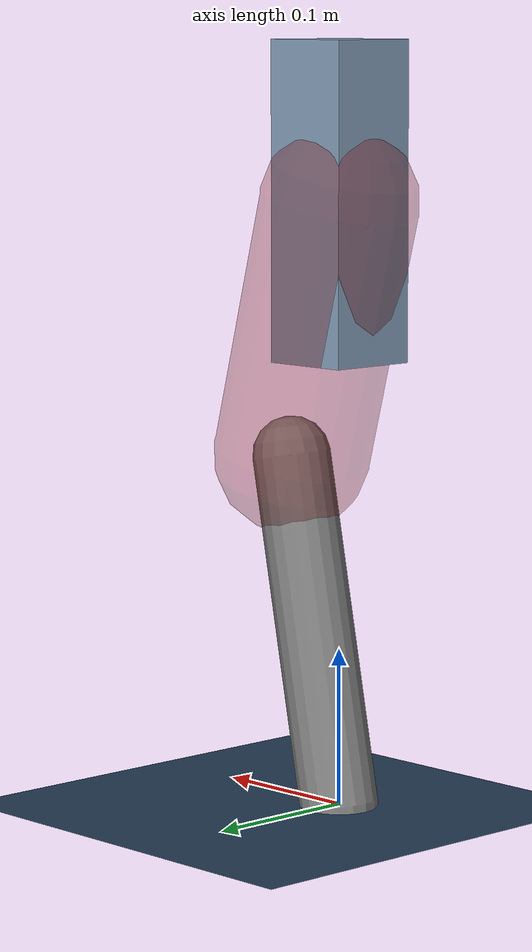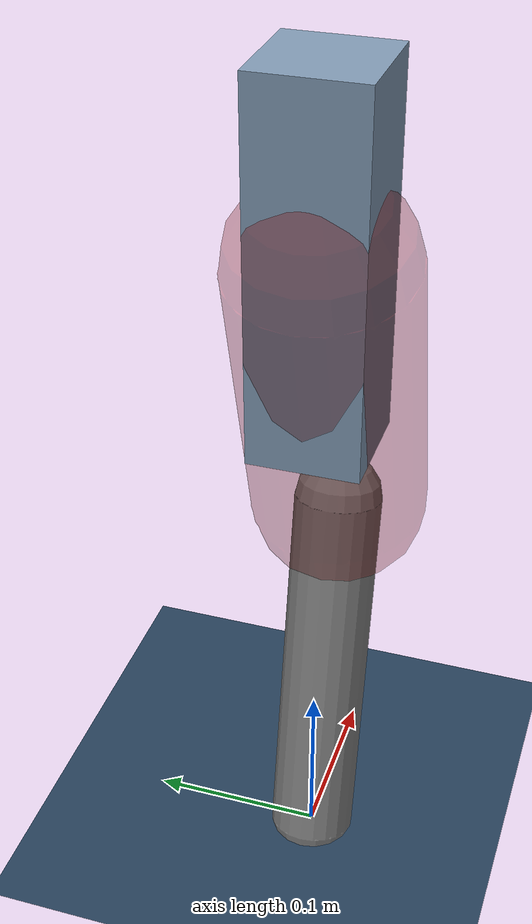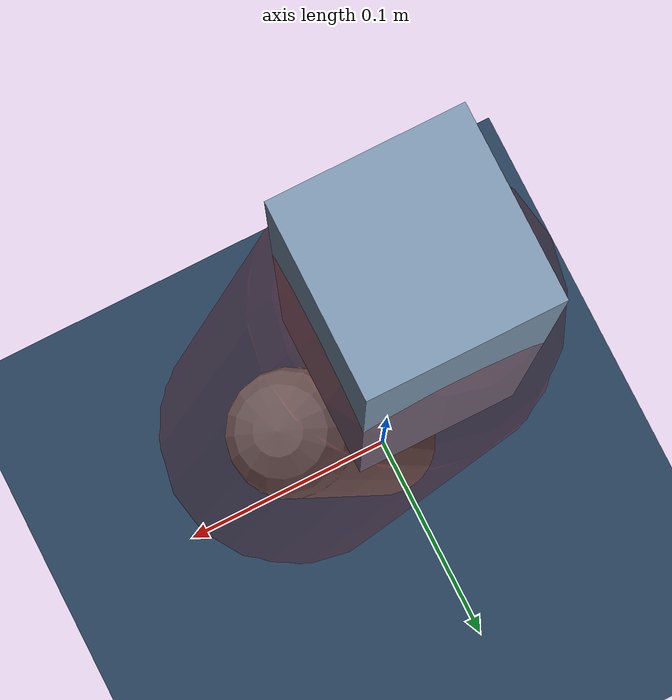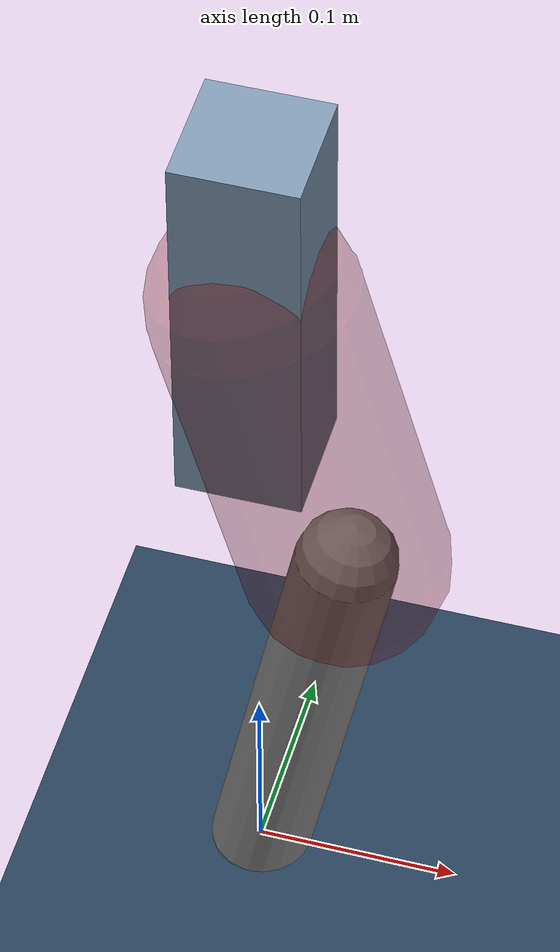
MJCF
<mujoco model="Hopper2D">
	<compiler inertiafromgeom="true" angle="radian" />
	<option timestep="0.001" integrator="implicit" cone="elliptic" solver="Newton" tolerance="1e-10" />

	<default>
		<geom contype="1" conaffinity="1" condim="3" friction="2 0.005 0.0001" solref="0.005 1" />
		<joint limited="true" damping="0.1" />
	</default>

	<asset>
		<texture name="skybox" type="skybox" builtin="gradient" rgb1=".4 .6 .8" rgb2="0 0 0" width="800" height="800" />
		<texture name="grid" type="2d" builtin="checker" rgb1=".1 .2 .3" rgb2=".2 .3 .4" width="300" height="300" mark="edge" markrgb=".2 .3 .4" />
		<material name="ground" texture="grid" texrepeat="1 1" texuniform="true" reflectance="0.1" />
		<material name="leg" rgba="0.5 0.6 0.7 1" />
	</asset>

	<worldbody>

		<geom name="floor" type="plane" size="5 5 0.25" material="ground" />

		<light directional="false" diffuse="0.8 0.8 0.8" specular="0.3 0.3 0.3" pos="0 0 2" dir="0 0 -1" />
		<light mode="targetbodycom" target="base" directional="false" diffuse="0.8 0.8 0.8" specular="0.3 0.3 0.3" pos="0 0 2" dir="0 0 -1" />

		<camera name="fixed" pos="0 -2 1" xyaxes="1 0 0 0 0 1" />
		<camera name="tracking" mode="trackcom" pos="0 -3 1" />

		<body name="root" pos="0 0 0.38183479167351825">
			<joint name="slide_x" type="slide" axis="1 0 0" range="-100 100" />
			<joint name="slide_z" type="slide" axis="0 0 1" range="0 10" />

			<body name="base" pos="0 0 0">
				<geom name="torso" type="box" size="0.03 0.03 0.1" mass="3.6630000000000003" material="leg" />

				<body name="link1" pos="0 0 0" euler="0 1.3088646914061495 0">
					<joint type="hinge" axis="0 -1 0" pos="0 0 0" name="hinge1" limited="true" range="-3.14 3.14" stiffness="0" damping="0.1" />
					<geom name="thigh" type="capsule" fromto="0 0 0 0.16801534295766873 0 0" size="0.05" rgba="0.5 0 0 0.3" mass="0.6515368230984049" />

					<body name="link2" pos="0.16801534295766873 0 0" euler="0 0.4575615829203017 0">
						<joint type="hinge" axis="0 -1 0" pos="0 0 0" name="hinge2" limited="true" range="-3.14 3.14" stiffness="0" damping="0.1" />
						<geom name="shank" type="capsule" fromto="0 0 0 0.22381944871584952 0 0" size="0.025" mass="0.4208555589726796" />

					</body>
				</body>
			</body>
		</body>
	</worldbody>

	<actuator>
		<motor name="torque1" joint="hinge1" ctrlrange="-248.2972822922923 248.2972822922923" ctrllimited="true" gear="1" />
		<motor name="torque2" joint="hinge2" ctrlrange="-62.309382893426694 62.309382893426694" ctrllimited="true" gear="1" />
	</actuator>
</mujoco>
